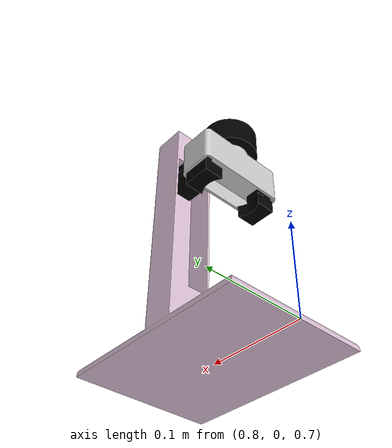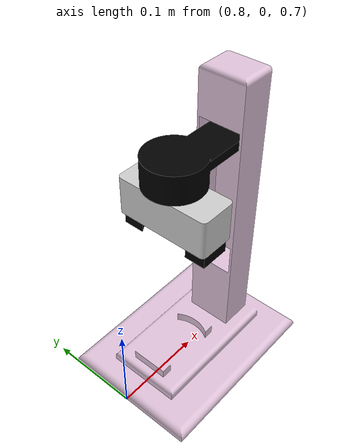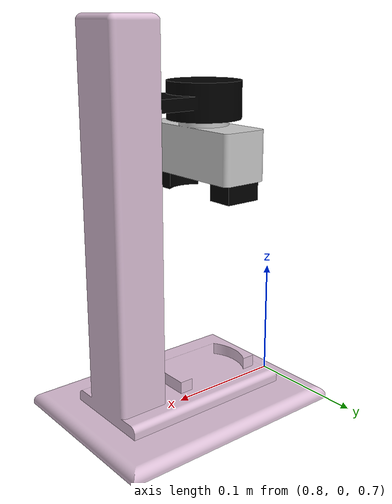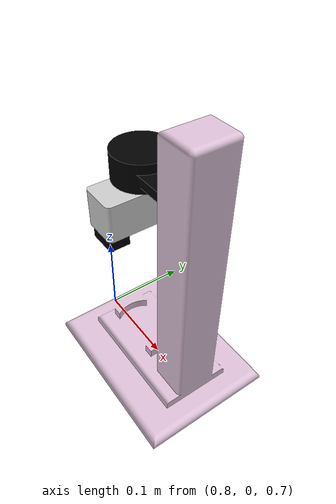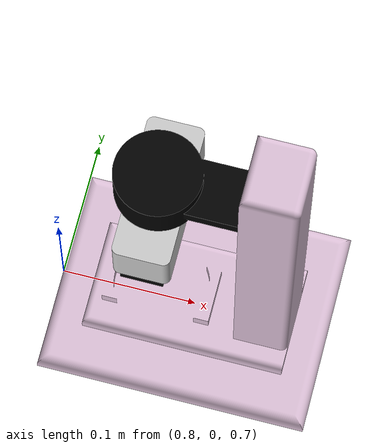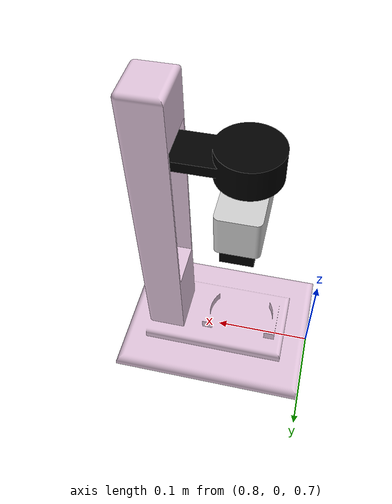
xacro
<?xml version="1.0"?>

<robot xmlns:xacro="http://www.ros.org/wiki/xacro" name="cap_openner">

    <xacro:include filename="$(find abb_gofa_description)/urdf/cap_openner/cap_openner_ros2_control.urdf.xacro" />
    <xacro:cap_openner_ros2_control/>

  <link name="world"></link>
  <link name="openner_base">
    <inertial>
      <mass value="1"/>
      <origin xyz="0 0 0"/>
      <inertia ixx="0.1" ixy="0" ixz="0" iyy="0.1" iyz="0" izz="0.1"/>
    </inertial>
    <visual>
      <geometry>
        <mesh filename="file://$(find abb_gofa_description)/meshes/cap_openner/openner_base.dae"/>
      </geometry>
    </visual>
    <collision>
      <geometry>
        <mesh filename="file://$(find abb_gofa_description)/meshes/cap_openner/openner_base.dae"/>
      </geometry>
    </collision>
  </link>

  <link name="gripper_link">
    <inertial>
      <mass value="0.5"/>
      <origin xyz="0 0 0"/>
      <inertia ixx="0.1" ixy="0" ixz="0" iyy="0.1" iyz="0" izz="0.1"/>
    </inertial>
    <visual>
      <geometry>
        <mesh filename="file://$(find abb_gofa_description)/meshes/cap_openner/gripper_link.dae"/>
      </geometry>
    </visual>
    <collision>
      <geometry>
        <mesh filename="file://$(find abb_gofa_description)/meshes/cap_openner/gripper_link.dae"/>
      </geometry>
    </collision>
  </link>

  <link name="gripper_base">
    <inertial>
      <mass value="0.3"/>
      <origin xyz="0 0 0"/>
      <inertia ixx="0.1" ixy="0" ixz="0" iyy="0.1" iyz="0" izz="0.1"/>
    </inertial>
    <visual>
      <geometry>
        <mesh filename="file://$(find abb_gofa_description)/meshes/cap_openner/gripper_base.dae"/>
      </geometry>
    </visual>
    <collision>
      <geometry>
        <mesh filename="file://$(find abb_gofa_description)/meshes/cap_openner/gripper_base.dae"/>
      </geometry>
    </collision>
  </link>

  <link name="left_gripper">
    <inertial>
      <mass value="0.3"/>
      <origin xyz="0 0 0"/>
      <inertia ixx="0.1" ixy="0" ixz="0" iyy="0.1" iyz="0" izz="0.1"/>
    </inertial>
    <visual>
      <geometry>
        <mesh filename="file://$(find abb_gofa_description)/meshes/cap_openner/left_gripper.dae"/>
      </geometry>
    </visual>
    <collision>
      <geometry>
        <mesh filename="file://$(find abb_gofa_description)/meshes/cap_openner/left_gripper.dae"/>
      </geometry>
    </collision>
  </link>

  <link name="right_gripper">
    <inertial>
      <mass value="0.3"/>
      <origin xyz="0 0 0" rpy="0.0 0.0 0.0"/>
      <inertia ixx="0.1" ixy="0" ixz="0" iyy="0.1" iyz="0" izz="0.1"/>
    </inertial>
    <visual>
      <geometry>
        <mesh filename="file://$(find abb_gofa_description)/meshes/cap_openner/right_gripper.dae"/>
      </geometry>
    </visual>
    <collision>
      <geometry>
        <mesh filename="file://$(find abb_gofa_description)/meshes/cap_openner/right_gripper.dae"/>
      </geometry>
    </collision>
  </link>

  <joint name="world2base" type="fixed">
    <origin xyz="0.9 0  0.71" rpy="0.0 0.0 1.57079"/>
    <parent link="world"/>
    <child link="openner_base"/>
  </joint>

  <joint name="base2link" type="prismatic">
    <origin xyz="0.0 0.025 0.23" rpy="0.0 0.0 -1.5707"/>
    <parent link="openner_base"/>
    <child link="gripper_link"/>
    <axis xyz="0.0 0.0 1"/>
    <limit lower="-0.14" upper="0.01" effort="1" velocity="0.5"/>
  </joint>

  <joint name="link2base" type="continuous">
    <origin xyz="0.0 0.0 -0.045" rpy="0.0 0.0 1.5707"/>
    <parent link="gripper_link"/>
    <child link="gripper_base"/>
    <axis xyz="0.0 0.0 1"/>
  </joint>

  <joint name="left_gripper2base" type="prismatic">
    <origin xyz="-0.0475 0.0 -0.015" rpy="0.0 0.0 0.0"/>
    <parent link="gripper_base"/>
    <child link="left_gripper"/>
    <axis xyz="1.0 0.0 0.0"/>
    <limit lower="0" upper="0.0275" effort="1.0" velocity="0.5"/>
  </joint>

  <joint name="right_gripper2base" type="prismatic">
    <origin xyz="0.0475 0.0 -0.015" rpy="0.0 0.0 3.1415926"/>
    <parent link="gripper_base"/>
    <child link="right_gripper"/>
    <axis xyz="1.0 0.0 0.0"/>
    <limit lower="0" upper="0.0275" effort="1.0" velocity="0.5"/>
  </joint>
</robot>
